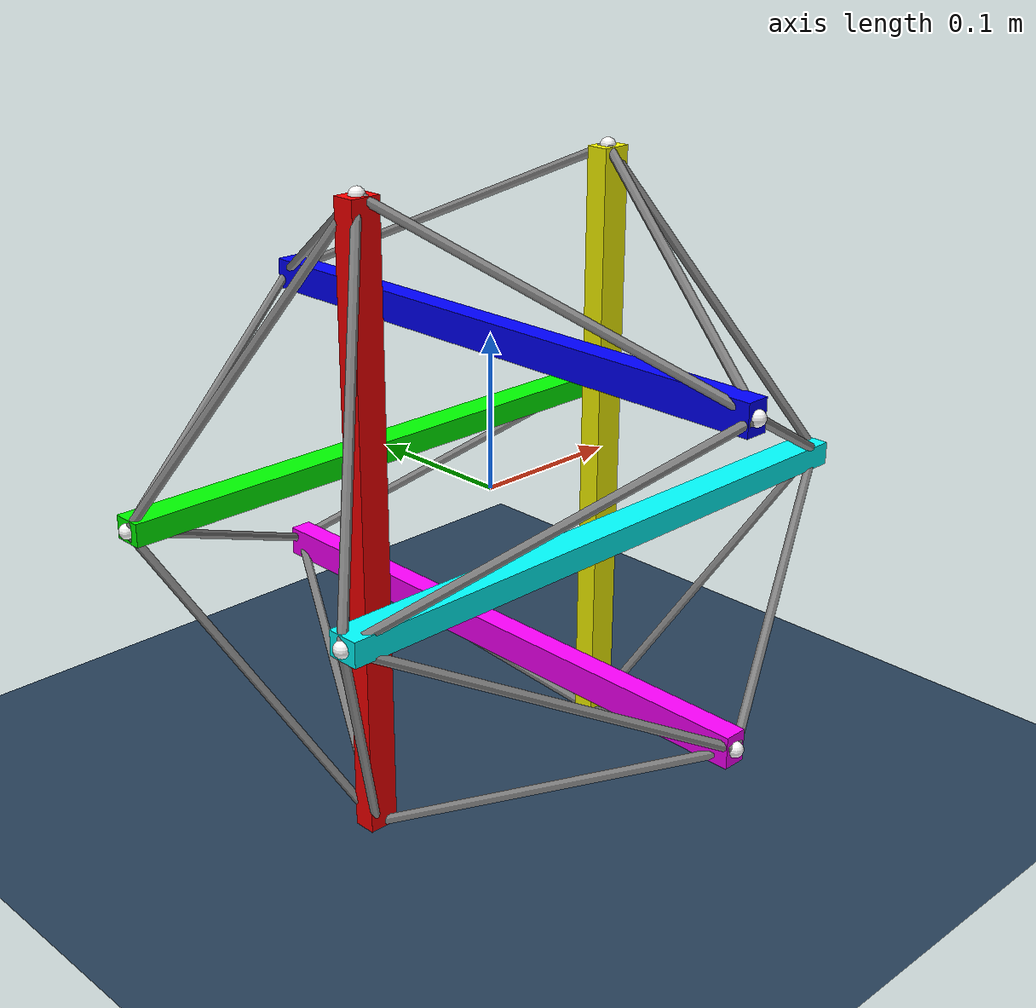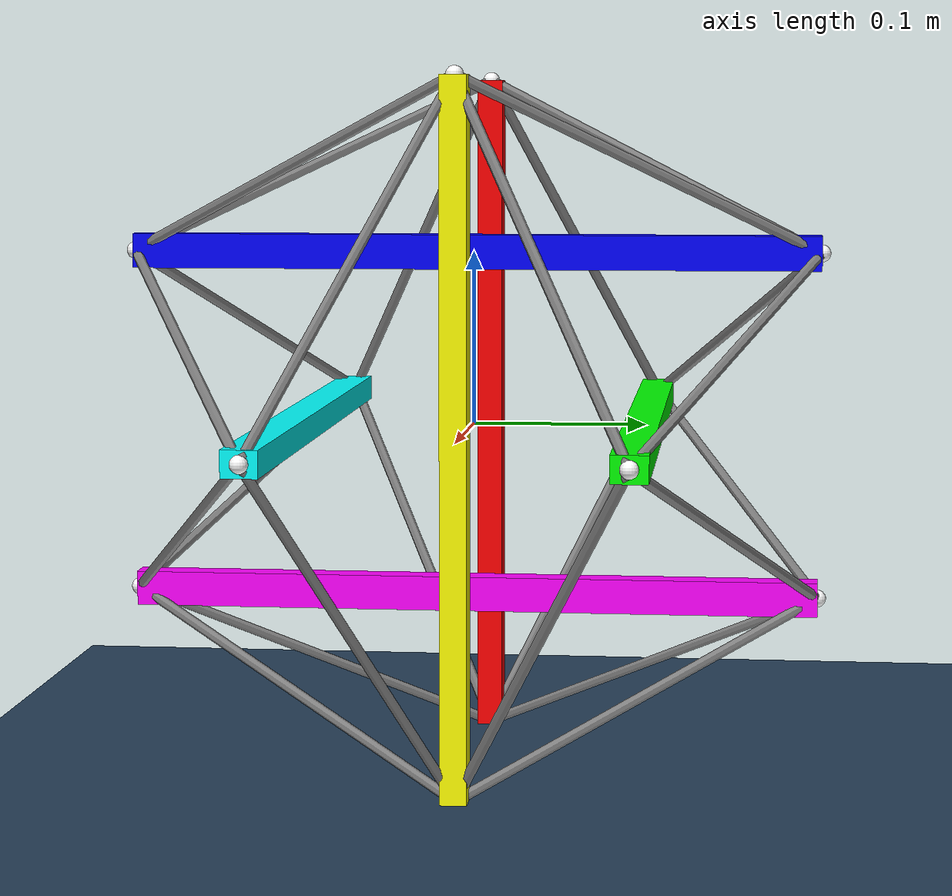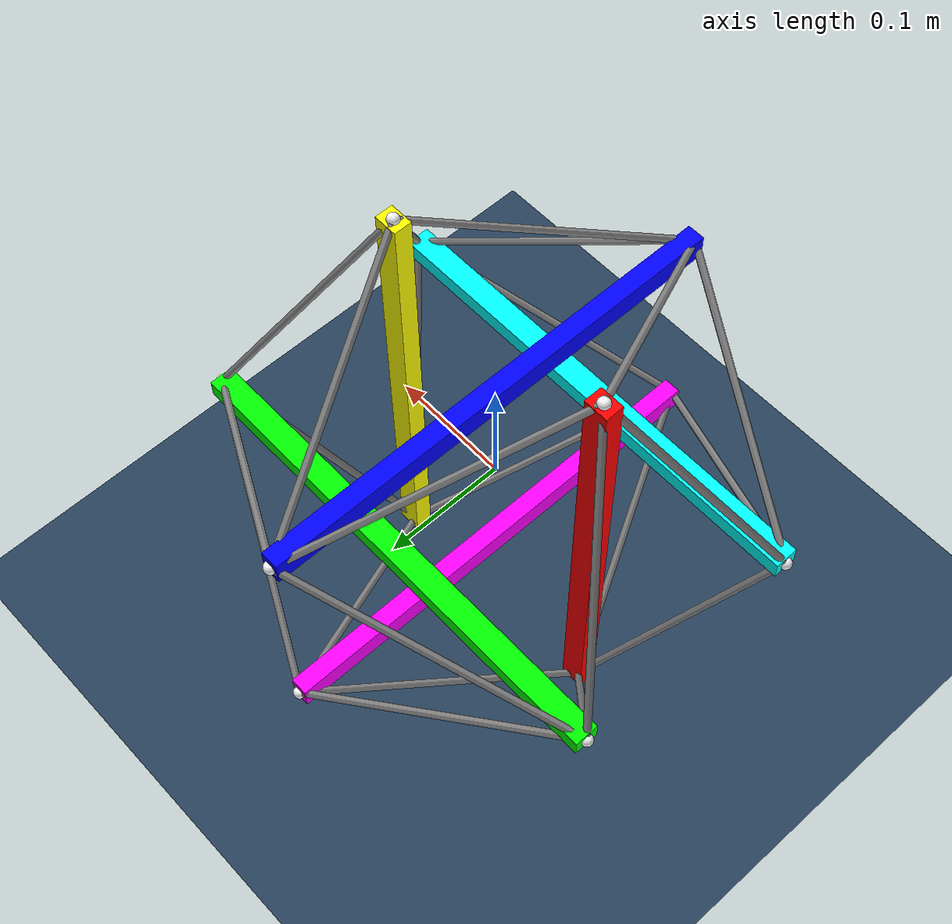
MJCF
<mujoco model="scene">
  <include file="tensegrity_24act.xml"/>

  <visual>
    <headlight diffuse="0.6 0.6 0.6" ambient="0.5 0.5 0.3" specular="0 0 0"/>
    </visual>

    <asset>
      <texture type="skybox" builtin="gradient" rgb1="0.3 0.5 0.7" rgb2="0.1 0.1 0.1" width="512" height="3072"/>
      <texture type="2d" name="groundplane" builtin="checker" mark="edge" rgb1="0.2 0.3 0.4" rgb2="0.1 0.2 0.3" markrgb="0.8 0.8 0.8" width="300" height="300"/>
      <material name="groundplane" texture="groundplane" texuniform="true" texrepeat="5 5"
        reflectance="0.2"/>
    </asset>

    <worldbody>
      <light pos="0 0 1.5" dir="0 0 -1" directional="true"/>
      <geom name="floor" pos="0 0 -0.2" size="0 0 0.05" type="plane" material="groundplane"/>
    </worldbody>

    <contact>
      <pair geom1="floor" geom2="link1" friction="1.0 1.0"/>
      <pair geom1="floor" geom2="link2" friction="1.0 1.0"/>
      <pair geom1="floor" geom2="link3" friction="1.0 1.0"/>
      <pair geom1="floor" geom2="link4" friction="1.0 1.0"/>
      <pair geom1="floor" geom2="link5" friction="1.0 1.0"/>
      <pair geom1="floor" geom2="link6" friction="1.0 1.0"/>
      <pair geom1="link1" geom2="link2"/>
      <pair geom1="link1" geom2="link3"/>
      <pair geom1="link1" geom2="link4"/>
      <pair geom1="link1" geom2="link5"/>
      <pair geom1="link1" geom2="link6"/>
      <pair geom1="link2" geom2="link3"/>
      <pair geom1="link2" geom2="link4"/>
      <pair geom1="link2" geom2="link5"/>
      <pair geom1="link2" geom2="link6"/>
      <pair geom1="link3" geom2="link4"/>
      <pair geom1="link3" geom2="link5"/>
      <pair geom1="link3" geom2="link6"/>
      <pair geom1="link4" geom2="link5"/>
      <pair geom1="link4" geom2="link6"/>
      <pair geom1="link5" geom2="link6"/>
    </contact>

  </mujoco>

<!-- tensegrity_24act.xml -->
<mujoco model="tensegrity">
  <option timestep="0.002" collision="predefined"/>
  <default>
    <site size="0.005" rgba="1 1 1 1"/>
    <default class="tendon_actuator">
      <general ctrllimited="true" ctrlrange="-6.0 0" dyntype="filter" dynprm="0.02"/> <!-- for real2sim -->
    </default>
    <default class="tendon_spatial">
      <tendon damping="5" stiffness="50" frictionloss="0.5"/>
    </default>
  </default>
  <worldbody>
    <light pos="0 1 1" dir="0 -1 -1" diffuse="1 1 1"/>

      <!-- link -->
    <body name="link1" pos="-0.1 0 0">
      <geom name="link1" type="box" size="0.01 0.0075 0.2" mass="0.1" rgba="1 0 0 1" pos="0 0 0"/>
      <joint name="link1" type="free"/>
      <site name="link1_top" pos="0 0.00 0.2"/>
      <site name="link1_bottom" pos="0 0.00 -0.2"/>
      <site name="imu" pos="0.0 0 0"/>
    </body>

    <body name="link2" pos="0.1 0 0">
      <geom name="link2" type="box" size="0.01 0.0075 0.2" mass="0.1" rgba="1 1 0 1" pos="0 0 0"/>
      <joint name="link2" type="free"/>
      <site name="link2_top" pos="0.0 0.00 0.2"/>
      <site name="link2_bottom" pos="0.0 0.00 -0.2"/>
    </body>

    <body name="link3" pos="0 0.1 0">
      <geom name="link3" type="box" size="0.2 0.01 0.0075" mass="0.1" rgba="0 1 0 1" pos="0 0 0"/>
      <joint name="link3" type="free"/>
      <site name="link3_top" pos="0.2 0.0 0.0"/>
      <site name="link3_bottom" pos="-0.2 0.0 0.0"/>
    </body>

    <body name="link4" pos="0 -0.1 0">
      <geom name="link4" type="box" size="0.2 0.01 0.0075" mass="0.1" rgba="0 1 1 1" pos="0 0 0"/>
      <joint name="link4" type="free"/>
      <site name="link4_top" pos="0.2 0.0 0.0"/>
      <site name="link4_bottom" pos="-0.2 0.0 0.0"/>
    </body>

    <body name="link5" pos="0 0 0.1">
      <geom name="link5" type="box" size="0.0075 0.2 0.01" mass="0.1" rgba="0 0 1 1" pos="0 0 0"/>
      <joint name="link5" type="free"/>
      <site name="link5_top" pos="0.0 0.2 0.0"/>
      <site name="link5_bottom" pos="0.0 -0.2 0.0"/>
    </body>

    <body name="link6" pos="0 0 -0.1">
      <geom name="link6" type="box" size="0.0075 0.2 0.01" mass="0.1" rgba="1 0 1 1" pos="0 0 0"/>
      <joint name="link6" type="free"/>
      <site name="link6_top" pos="0.0 0.2 0.0"/>
      <site name="link6_bottom" pos="0.0 -0.2 0.0"/>
    </body>

  </worldbody>

  <tendon>
    <!-- link1 -->
    <spatial name="link1t_3b" class="tendon_spatial">
      <site site="link1_top"/>
      <site site="link3_bottom"/>
    </spatial>
    <spatial name="link1t_4b" class="tendon_spatial">
      <site site="link1_top"/>
      <site site="link4_bottom"/>
    </spatial>
    <spatial name="link1b_3b" class="tendon_spatial">
      <site site="link1_bottom"/>
      <site site="link3_bottom"/>
    </spatial>
    <spatial name="link1b_4b" class="tendon_spatial">
      <site site="link1_bottom"/>
      <site site="link4_bottom"/>
    </spatial>
    <spatial name="link1b_6t" class="tendon_spatial">
      <site site="link1_bottom"/>
      <site site="link6_top"/>
    </spatial>
    <spatial name="link1b_6b" class="tendon_spatial">
      <site site="link1_bottom"/>
      <site site="link6_bottom"/>
    </spatial>
    <spatial name="link1t_5t" class="tendon_spatial">
      <site site="link1_top"/>
      <site site="link5_top"/>
    </spatial>
    <spatial name="link1t_5b" class="tendon_spatial">
      <site site="link1_top"/>
      <site site="link5_bottom"/>
    </spatial>

    <!-- link2 -->
    <spatial name="link2t_3t" class="tendon_spatial">
      <site site="link2_top"/>
      <site site="link3_top"/>
    </spatial>
    <spatial name="link2t_4t" class="tendon_spatial">
      <site site="link2_top"/>
      <site site="link4_top"/>
    </spatial>
    <spatial name="link2b_3t" class="tendon_spatial">
      <site site="link2_bottom"/>
      <site site="link3_top"/>
    </spatial>
    <spatial name="link2b_4t" class="tendon_spatial">
      <site site="link2_bottom"/>
      <site site="link4_top"/>
    </spatial>
    <spatial name="link2b_6t" class="tendon_spatial">
      <site site="link2_bottom"/>
      <site site="link6_top"/>
    </spatial>
    <spatial name="link2b_6b" class="tendon_spatial">
      <site site="link2_bottom"/>
      <site site="link6_bottom"/>
    </spatial>
    <spatial name="link2t_5t" class="tendon_spatial">
      <site site="link2_top"/>
      <site site="link5_top"/>
    </spatial>
    <spatial name="link2t_5b" class="tendon_spatial">
      <site site="link2_top"/>
      <site site="link5_bottom"/>
    </spatial>

    <!-- link3 -->
    <spatial name="link3t_5t" class="tendon_spatial">
      <site site="link3_top"/>
      <site site="link5_top"/>
    </spatial>
    <spatial name="link3b_5t" class="tendon_spatial">
      <site site="link3_bottom"/>
      <site site="link5_top"/>
    </spatial>
    <spatial name="link3t_6t" class="tendon_spatial">
      <site site="link3_top"/>
      <site site="link6_top"/>
    </spatial>
    <spatial name="link3b_6t" class="tendon_spatial">
      <site site="link3_bottom"/>
      <site site="link6_top"/>
    </spatial>

    <!-- link4 -->
    <spatial name="link4t_5b" class="tendon_spatial">
      <site site="link4_top"/>
      <site site="link5_bottom"/>
    </spatial>
    <spatial name="link4b_5b" class="tendon_spatial">
      <site site="link4_bottom"/>
      <site site="link5_bottom"/>
    </spatial>
    <spatial name="link4t_6b" class="tendon_spatial">
      <site site="link4_top"/>
      <site site="link6_bottom"/>
    </spatial>
    <spatial name="link4b_6b" class="tendon_spatial">
      <site site="link4_bottom"/>
      <site site="link6_bottom"/>
    </spatial>
  </tendon>

  <actuator>
    <!-- tention-controlled actuators-->
    <position name="link1t_3b" tendon="link1t_3b" kp="3" class="tendon_actuator"/>
    <position name="link1t_4b" tendon="link1t_4b" kp="3" class="tendon_actuator"/>
    <position name="link1b_3b" tendon="link1b_3b" kp="3" class="tendon_actuator"/>
    <position name="link1b_4b" tendon="link1b_4b" kp="3" class="tendon_actuator"/>
    <position name="link1b_6t" tendon="link1b_6t" kp="3" class="tendon_actuator"/>
    <position name="link1b_6b" tendon="link1b_6b" kp="3" class="tendon_actuator"/>
    <position name="link1t_5t" tendon="link1t_5t" kp="3" class="tendon_actuator"/>
    <position name="link1t_5b" tendon="link1t_5b" kp="3" class="tendon_actuator"/>
    <position name="link2t_3t" tendon="link2t_3t" kp="3" class="tendon_actuator"/>
    <position name="link2t_4t" tendon="link2t_4t" kp="3" class="tendon_actuator"/>
    <position name="link2b_3t" tendon="link2b_3t" kp="3" class="tendon_actuator"/>
    <position name="link2b_4t" tendon="link2b_4t" kp="3" class="tendon_actuator"/>
    <position name="link2b_6t" tendon="link2b_6t" kp="3" class="tendon_actuator"/>
    <position name="link2b_6b" tendon="link2b_6b" kp="3" class="tendon_actuator"/>
    <position name="link2t_5t" tendon="link2t_5t" kp="3" class="tendon_actuator"/>
    <position name="link2t_5b" tendon="link2t_5b" kp="3" class="tendon_actuator"/>
    <position name="link3t_5t" tendon="link3t_5t" kp="3" class="tendon_actuator"/>
    <position name="link3b_5t" tendon="link3b_5t" kp="3" class="tendon_actuator"/>
    <position name="link3t_6t" tendon="link3t_6t" kp="3" class="tendon_actuator"/>
    <position name="link3b_6t" tendon="link3b_6t" kp="3" class="tendon_actuator"/>
    <position name="link4t_5b" tendon="link4t_5b" kp="3" class="tendon_actuator"/>
    <position name="link4b_5b" tendon="link4b_5b" kp="3" class="tendon_actuator"/>
    <position name="link4b_6b" tendon="link4b_6b" kp="3" class="tendon_actuator"/>
    <position name="link4t_6b" tendon="link4t_5b" kp="3" class="tendon_actuator"/>
  </actuator>

  <sensor>
    <tendonpos name="link4t_5b" tendon="link4t_5b"/>
    <gyro name="gyro" site="imu"/>
    <accelerometer name="accelerometer" site="imu"/>
  </sensor>

</mujoco>
